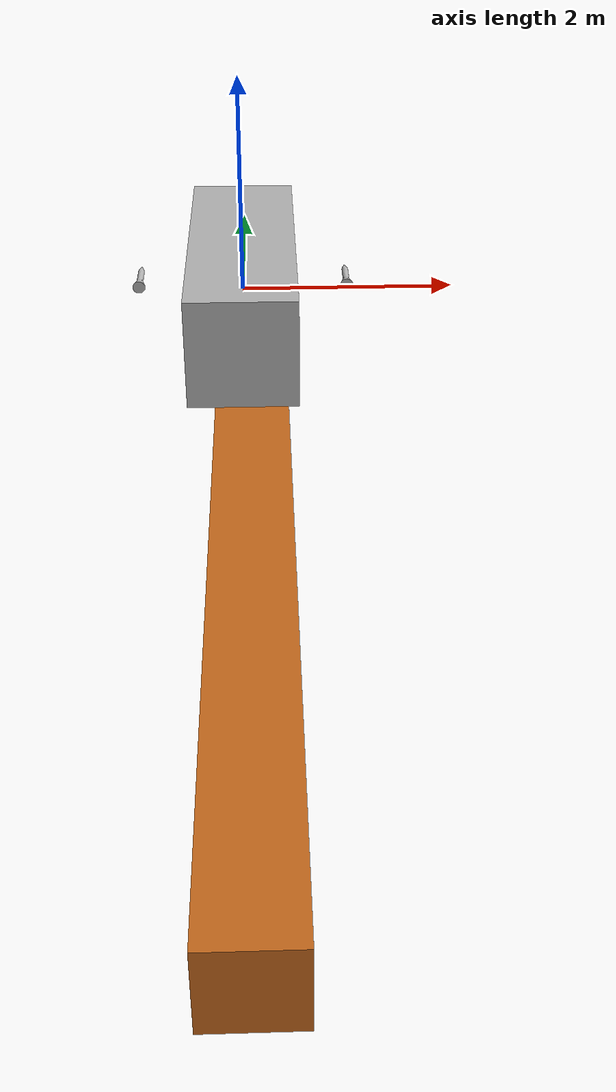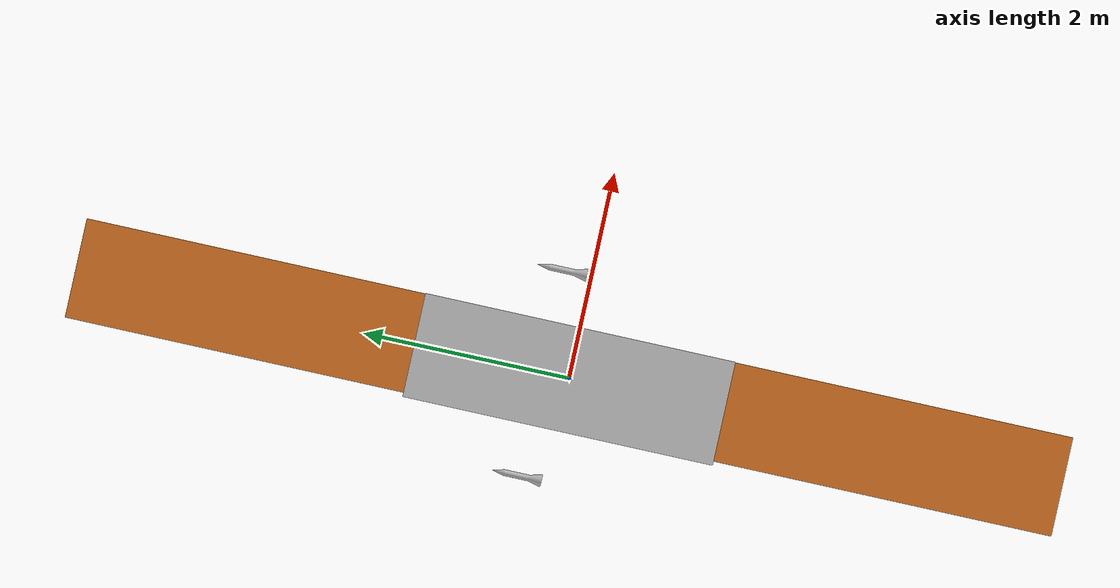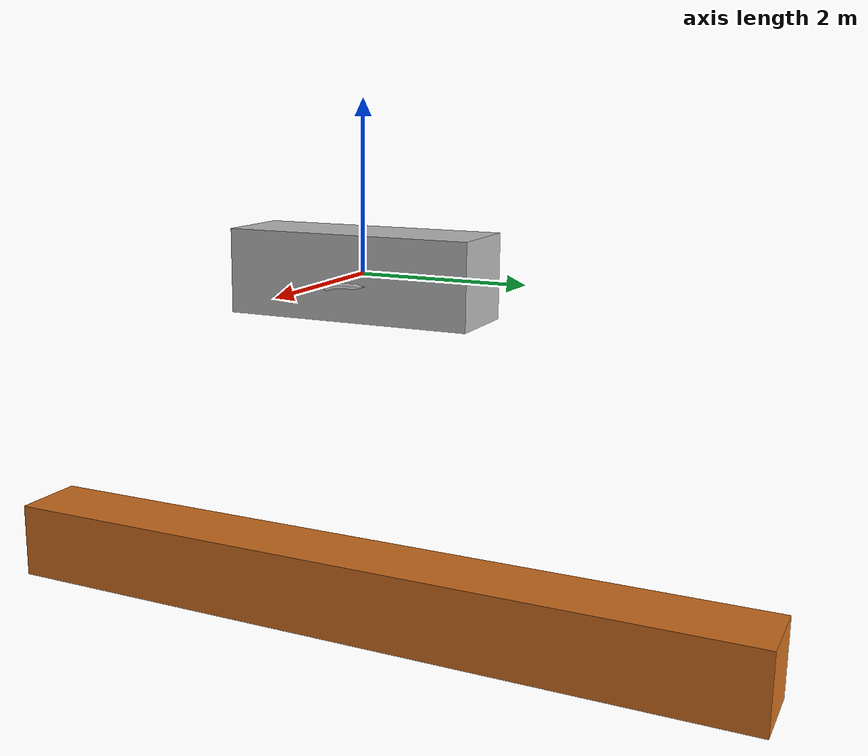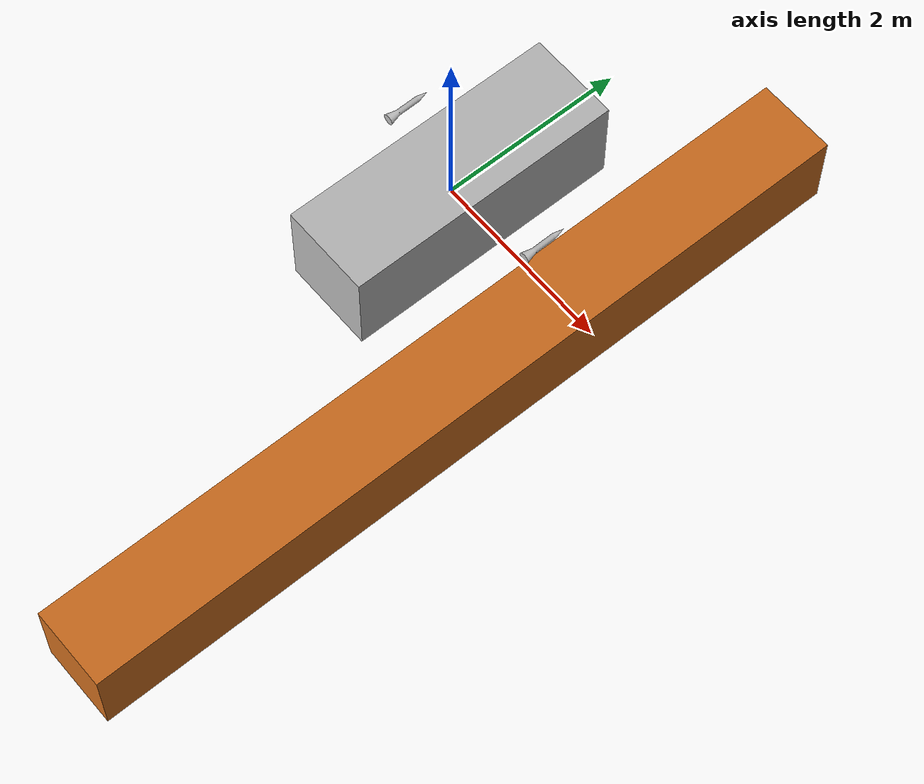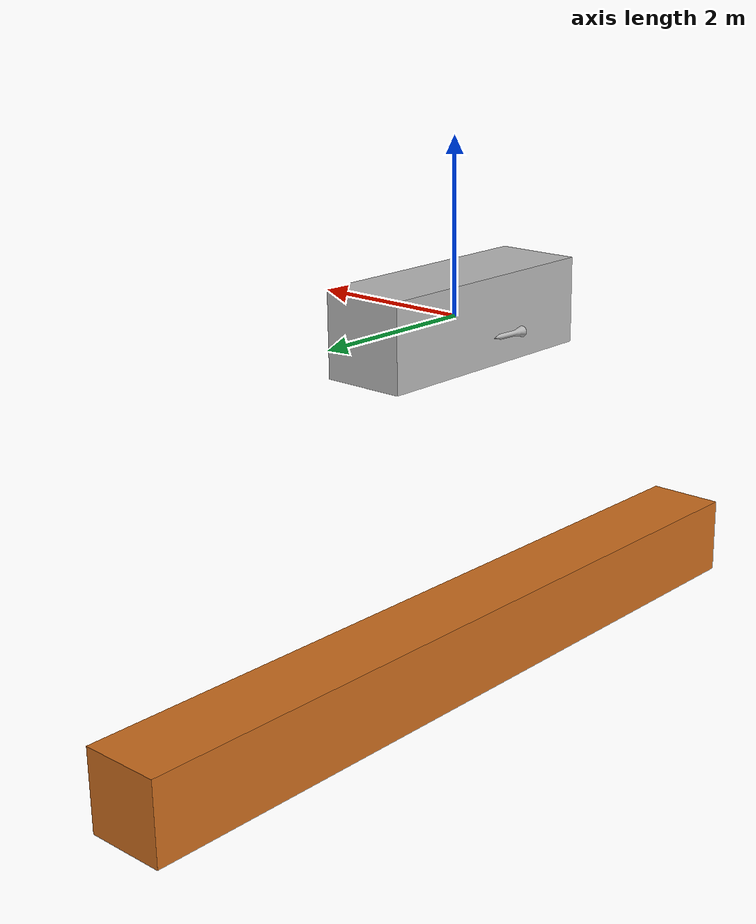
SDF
<?xml version="1.0" ?>
<sdf version="1.4">
  <world name="robosub_auv">
    <include>
      <uri>model://sun</uri>
    </include>

    <model name="orange_stripe">
      <static>true</static>
      <link name="orange_stripe_link">
        <pose>0 0 -4 0 0 0</pose>

        <visual name="visual">
          <geometry>
            <mesh>
              <uri>file://orange_stripe.dae</uri>
            </mesh>
          </geometry>
        </visual>
      </link>

    </model>

    <model name="box">
      <link name="left_torpedo_link">
        <gravity>false</gravity>
        <pose>-1 0 0 -1.54 0 0</pose>

        <visual name="visual">
          <geometry>
            <mesh>
              <uri>file://torpedo.dae</uri>
            </mesh>
          </geometry>
        </visual>
        <collision name="collision">
          <geometry>
            <mesh>
              <uri>file://torpedo.dae</uri>
            </mesh>
          </geometry>
        </collision>
      </link>

      <link name="right_torpedo_link">
        <pose>1 0 0 -1.54 0 0</pose>

        <gravity>false</gravity>
        <visual name="visual">
          <geometry>
            <mesh>
              <uri>file://torpedo.dae</uri>
            </mesh>
          </geometry>
        </visual>
        <collision name="collision">
          <geometry>
            <mesh>
              <uri>file://torpedo.dae</uri>
            </mesh>
          </geometry>
        </collision>
      </link>

      <link name="auv_body_link">
        <pose>0 0 0 0 0 0</pose>
        <gravity>true</gravity>

        <velocity_decay>
          <linear>0.001</linear>
          <angular>0.001</angular>
        </velocity_decay>

        <inertial>
          <mass>40</mass>
        </inertial>

        <collision name="collision">
          <geometry>
            <box>
              <size>1 3 1</size>
            </box>
          </geometry>
        </collision>
        <visual name="visual">
          <geometry>

            <box>
              <size>1 3 1</size>
            </box>
          </geometry>
        </visual>

        <sensor name="imu" type="imu">
          <update_rate>10</update_rate>
          <pose>0 2 0.2 0 0 0</pose>

          <imu>
            <noise>
              <rate>
                <stddev>0.01</stddev>
              </rate>

              <accel>
                <stddev>0.01</stddev>
              </accel>
            </noise>
          </imu>
        </sensor>

        <sensor name="front_camera" type="camera">
          <update_rate>30</update_rate>

          <pose>0 2 0.2 0 0 1.57</pose>
          <plugin name="camera_plugin" filename="gazebo-plugins/libcamera_plugin.so"></plugin>

          <camera>
            <image>
              <width>400</width>
              <height>300</height>

            </image>

            <noise>
              <mean>0</mean>
              <stddev>0.01</stddev>
            </noise>
          </camera>
        </sensor>
        <sensor name="bottom_camera" type="camera">
          <update_rate>30</update_rate>

          <pose>0 2 0.2 0 1.57 1.57</pose>
          <plugin name="camera_plugin" filename="gazebo-plugins/libcamera_plugin.so"></plugin>

          <camera>
            <image>
              <width>400</width>
              <height>300</height>

            </image>

            <noise>
              <mean>0</mean>
              <stddev>0.01</stddev>
            </noise>
          </camera>
        </sensor>
      </link>

      <joint name="left_torpedo_joint" type="ball" >
        <parent>auv_body_link</parent>
        <child>left_torpedo_link</child>
      </joint>

      <joint name="right_torpedo_joint" type="ball">
        <parent>auv_body_link</parent>
        <child>right_torpedo_link</child>
      </joint>

      <plugin name="robosub_auv" filename="gazebo-plugins/librobosub_auv_plugin.so" />
    </model>
  </world>
</sdf>
